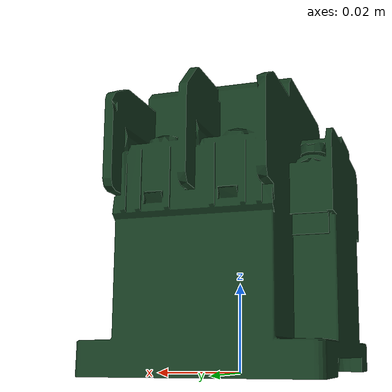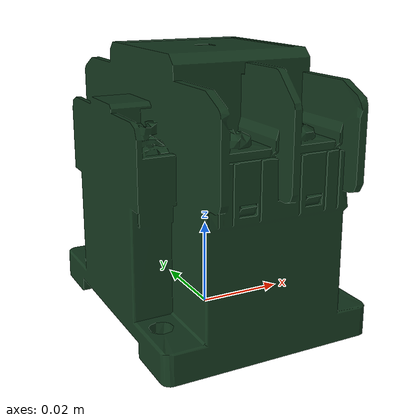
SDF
<?xml version="1.0" ?>
<sdf version="1.6">
  <model name="single_mc_gmc_30p2_ac220v">
    <link name="link">
      <gravity>false</gravity>
      <visual name="visual">
        <geometry>
          <mesh>
            <uri>file:///root/workcell_ws_classic/src/descriptions/ur_description/meshes/feeder/elec/objects/Single-MC_GMC_30P2_AC220V.STL</uri>
            <scale>1 1 1</scale>
          </mesh>
        </geometry>
        <material>
          <!-- Dark green metallic -->
          <ambient>0.05 0.15 0.08 1</ambient>
          <diffuse>0.08 0.22 0.12 1</diffuse>
          <specular>0.4 0.5 0.4 1</specular>
          <emissive>0 0 0 1</emissive>
        </material>
      </visual>

        <inertial>
          <mass>0.4</mass>
          <inertia>
            <ixx>0.001</ixx>
            <ixy>0</ixy>
            <ixz>0</ixz>
            <iyy>0.001</iyy>
            <iyz>0</iyz>
            <izz>0.001</izz>
          </inertia>
        </inertial>
    </link>
  </model>
</sdf>
